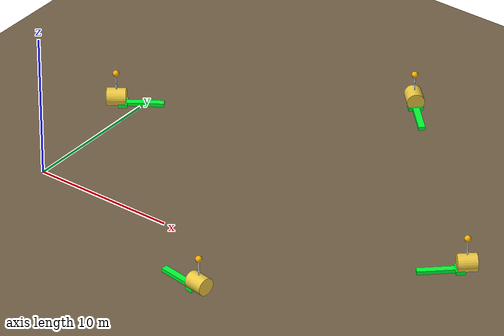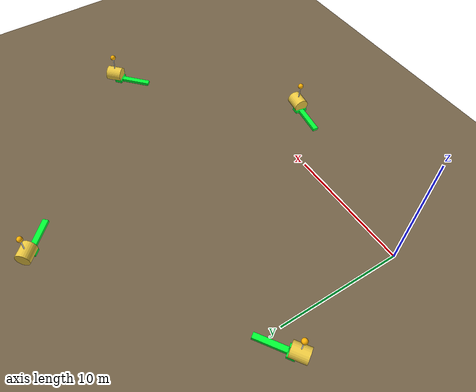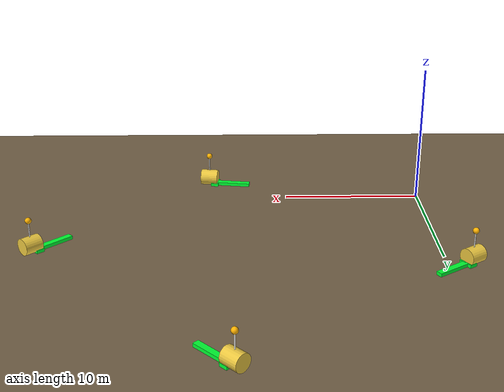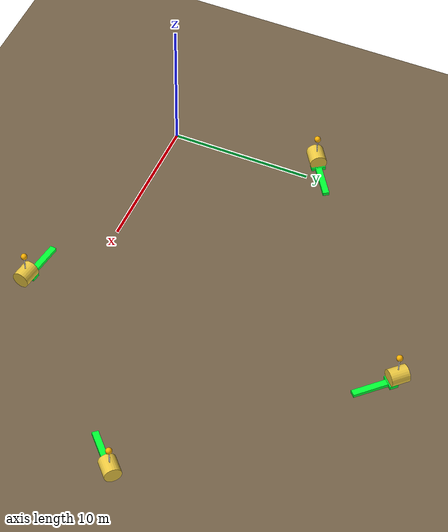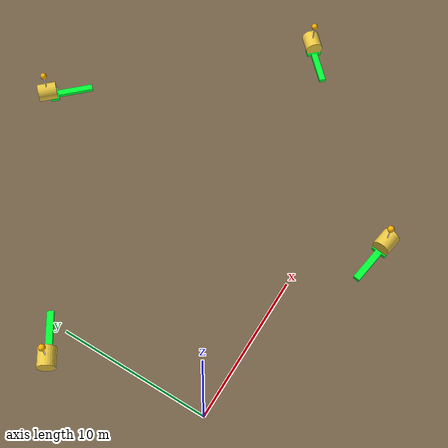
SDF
<sdf version="1.9">
 <world name="hege_field">
  <spherical_coordinates>
   <surface_model>EARTH_WGS84</surface_model>
   <world_frame_orientation>ENU</world_frame_orientation>
   <latitude_deg>52.466</latitude_deg>
   <longitude_deg>12.958</longitude_deg>
   <elevation>35.0</elevation>
   <heading_deg>0.0</heading_deg>
  </spherical_coordinates>
  <physics name="4ms" type="ignored">
   <max_step_size>0.004</max_step_size>
   <real_time_factor>1.0</real_time_factor>
  </physics>
  <plugin filename="gz-sim-physics-system" name="gz::sim::systems::Physics"/>
  <plugin filename="gz-sim-user-commands-system" name="gz::sim::systems::UserCommands"/>
  <plugin filename="gz-sim-scene-broadcaster-system" name="gz::sim::systems::SceneBroadcaster"/>
  <plugin filename="gz-sim-imu-system" name="gz::sim::systems::Imu"/>
  <plugin filename="gz-sim-navsat-system" name="gz::sim::systems::NavSat"/>
  <scene>
   <ambient>0.6 0.6 0.6 1.0</ambient>
   <background>0.8 0.8 0.8 1.0</background>
   <shadows>false</shadows>
   <grid>false</grid>
  </scene>
  <light type="directional" name="sun">
   <cast_shadows>false</cast_shadows>
   <pose>0 0 50 0 0 0</pose>
   <diffuse>0.9 0.9 0.9 1</diffuse>
   <specular>0.2 0.2 0.2 1</specular>
   <direction>-0.5 0.1 -0.9</direction>
  </light>
  <model name="infinite_ground_plane">
   <static>true</static>
   <link name="link">
    <collision name="collision">
     <geometry><plane><normal>0 0 1</normal><size>2000 2000</size></plane></geometry>
     <surface><friction><ode><mu>100.0</mu><mu2>100.0</mu2></ode></friction></surface>
    </collision>
    <visual name="visual">
     <geometry><plane><normal>0 0 1</normal><size>2000 2000</size></plane></geometry>
     <material><ambient>0.45 0.38 0.28 1</ambient><diffuse>0.45 0.38 0.28 1</diffuse></material>
    </visual>
   </link>
   <pose>0 0 -0.65 0 0 0</pose>
  </model>
  <model name="hay_bale_1">
   <static>true</static>
   <pose>16.0 -4.0 -0.50 0 0 -0.15</pose>
   <link name="link">
    <visual name="bale_visual">
     <pose>0 0 0.6 0 1.570796 0</pose>
     <geometry><cylinder><radius>0.6</radius><length>1.3</length></cylinder></geometry>
     <material>
      <ambient>0.92 0.78 0.25 1</ambient>
      <diffuse>0.92 0.78 0.25 1</diffuse>
      <emissive>0.25 0.18 0.02 1</emissive>
     </material>
    </visual>
    <visual name="arrow_shaft">
     <pose>-1.9 0 0.125 0 0 0</pose>
     <geometry><box><size>2.6 0.45 0.25</size></box></geometry>
     <material><ambient>0 1 0.2 1</ambient><diffuse>0 1 0.2 1</diffuse><emissive>0 0.9 0.2 1</emissive></material>
    </visual>
    <visual name="arrow_head">
     <pose>-0.45 0 0.125 0 0 0</pose>
     <geometry><box><size>0.6 1.0 0.25</size></box></geometry>
     <material><ambient>0 1 0.2 1</ambient><diffuse>0 1 0.2 1</diffuse><emissive>0 0.9 0.2 1</emissive></material>
    </visual>
    <visual name="flag_pole">
     <pose>0 0 1.2 0 0 0</pose>
     <geometry><cylinder><radius>0.04</radius><length>2.4</length></cylinder></geometry>
     <material><ambient>1 1 1 1</ambient><diffuse>1 1 1 1</diffuse></material>
    </visual>
    <visual name="beacon">
     <pose>0 0 2.4 0 0 0</pose>
     <geometry><sphere><radius>0.22</radius></sphere></geometry>
     <material><ambient>1 0.7 0 1</ambient><diffuse>1 0.7 0 1</diffuse><emissive>1 0.7 0 1</emissive></material>
    </visual>
   </link>
  </model>
  <model name="hay_bale_2">
   <static>true</static>
   <pose>28.0 8.0 -0.50 0 0 0.75</pose>
   <link name="link">
    <visual name="bale_visual">
     <pose>0 0 0.6 0 1.570796 0</pose>
     <geometry><cylinder><radius>0.6</radius><length>1.3</length></cylinder></geometry>
     <material>
      <ambient>0.92 0.78 0.25 1</ambient>
      <diffuse>0.92 0.78 0.25 1</diffuse>
      <emissive>0.25 0.18 0.02 1</emissive>
     </material>
    </visual>
    <visual name="arrow_shaft">
     <pose>-1.9 0 0.125 0 0 0</pose>
     <geometry><box><size>2.6 0.45 0.25</size></box></geometry>
     <material><ambient>0 1 0.2 1</ambient><diffuse>0 1 0.2 1</diffuse><emissive>0 0.9 0.2 1</emissive></material>
    </visual>
    <visual name="arrow_head">
     <pose>-0.45 0 0.125 0 0 0</pose>
     <geometry><box><size>0.6 1.0 0.25</size></box></geometry>
     <material><ambient>0 1 0.2 1</ambient><diffuse>0 1 0.2 1</diffuse><emissive>0 0.9 0.2 1</emissive></material>
    </visual>
    <visual name="flag_pole">
     <pose>0 0 1.2 0 0 0</pose>
     <geometry><cylinder><radius>0.04</radius><length>2.4</length></cylinder></geometry>
     <material><ambient>1 1 1 1</ambient><diffuse>1 1 1 1</diffuse></material>
    </visual>
    <visual name="beacon">
     <pose>0 0 2.4 0 0 0</pose>
     <geometry><sphere><radius>0.22</radius></sphere></geometry>
     <material><ambient>1 0.7 0 1</ambient><diffuse>1 0.7 0 1</diffuse><emissive>1 0.7 0 1</emissive></material>
    </visual>
   </link>
  </model>
  <model name="hay_bale_3">
   <static>true</static>
   <pose>14.0 22.0 -0.50 0 0 2.35</pose>
   <link name="link">
    <visual name="bale_visual">
     <pose>0 0 0.6 0 1.570796 0</pose>
     <geometry><cylinder><radius>0.6</radius><length>1.3</length></cylinder></geometry>
     <material>
      <ambient>0.92 0.78 0.25 1</ambient>
      <diffuse>0.92 0.78 0.25 1</diffuse>
      <emissive>0.25 0.18 0.02 1</emissive>
     </material>
    </visual>
    <visual name="arrow_shaft">
     <pose>-1.9 0 0.125 0 0 0</pose>
     <geometry><box><size>2.6 0.45 0.25</size></box></geometry>
     <material><ambient>0 1 0.2 1</ambient><diffuse>0 1 0.2 1</diffuse><emissive>0 0.9 0.2 1</emissive></material>
    </visual>
    <visual name="arrow_head">
     <pose>-0.45 0 0.125 0 0 0</pose>
     <geometry><box><size>0.6 1.0 0.25</size></box></geometry>
     <material><ambient>0 1 0.2 1</ambient><diffuse>0 1 0.2 1</diffuse><emissive>0 0.9 0.2 1</emissive></material>
    </visual>
    <visual name="flag_pole">
     <pose>0 0 1.2 0 0 0</pose>
     <geometry><cylinder><radius>0.04</radius><length>2.4</length></cylinder></geometry>
     <material><ambient>1 1 1 1</ambient><diffuse>1 1 1 1</diffuse></material>
    </visual>
    <visual name="beacon">
     <pose>0 0 2.4 0 0 0</pose>
     <geometry><sphere><radius>0.22</radius></sphere></geometry>
     <material><ambient>1 0.7 0 1</ambient><diffuse>1 0.7 0 1</diffuse><emissive>1 0.7 0 1</emissive></material>
    </visual>
   </link>
  </model>
  <model name="hay_bale_4">
   <static>true</static>
   <pose>-2.0 10.0 -0.50 0 0 -2.55</pose>
   <link name="link">
    <visual name="bale_visual">
     <pose>0 0 0.6 0 1.570796 0</pose>
     <geometry><cylinder><radius>0.6</radius><length>1.3</length></cylinder></geometry>
     <material>
      <ambient>0.92 0.78 0.25 1</ambient>
      <diffuse>0.92 0.78 0.25 1</diffuse>
      <emissive>0.25 0.18 0.02 1</emissive>
     </material>
    </visual>
    <visual name="arrow_shaft">
     <pose>-1.9 0 0.125 0 0 0</pose>
     <geometry><box><size>2.6 0.45 0.25</size></box></geometry>
     <material><ambient>0 1 0.2 1</ambient><diffuse>0 1 0.2 1</diffuse><emissive>0 0.9 0.2 1</emissive></material>
    </visual>
    <visual name="arrow_head">
     <pose>-0.45 0 0.125 0 0 0</pose>
     <geometry><box><size>0.6 1.0 0.25</size></box></geometry>
     <material><ambient>0 1 0.2 1</ambient><diffuse>0 1 0.2 1</diffuse><emissive>0 0.9 0.2 1</emissive></material>
    </visual>
    <visual name="flag_pole">
     <pose>0 0 1.2 0 0 0</pose>
     <geometry><cylinder><radius>0.04</radius><length>2.4</length></cylinder></geometry>
     <material><ambient>1 1 1 1</ambient><diffuse>1 1 1 1</diffuse></material>
    </visual>
    <visual name="beacon">
     <pose>0 0 2.4 0 0 0</pose>
     <geometry><sphere><radius>0.22</radius></sphere></geometry>
     <material><ambient>1 0.7 0 1</ambient><diffuse>1 0.7 0 1</diffuse><emissive>1 0.7 0 1</emissive></material>
    </visual>
   </link>
  </model>
  <physics name="1ms" type="ignored">
   <max_step_size>0.001</max_step_size>
   <real_time_factor>1.0</real_time_factor>
  </physics>
  <scene><ambient>0.5 0.5 0.5 1</ambient><shadows>true</shadows></scene>
 </world>
</sdf>
